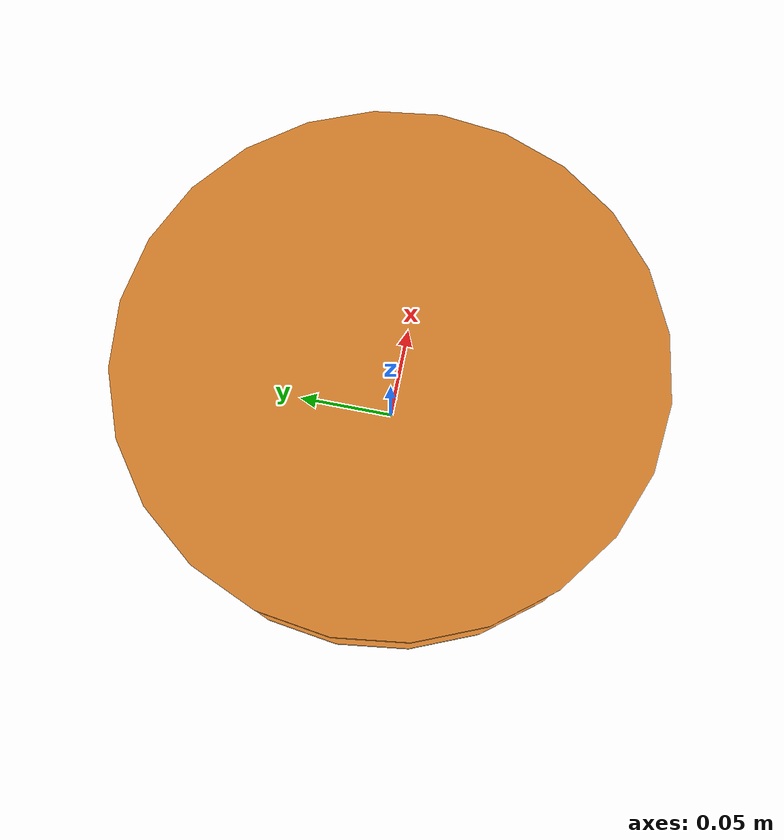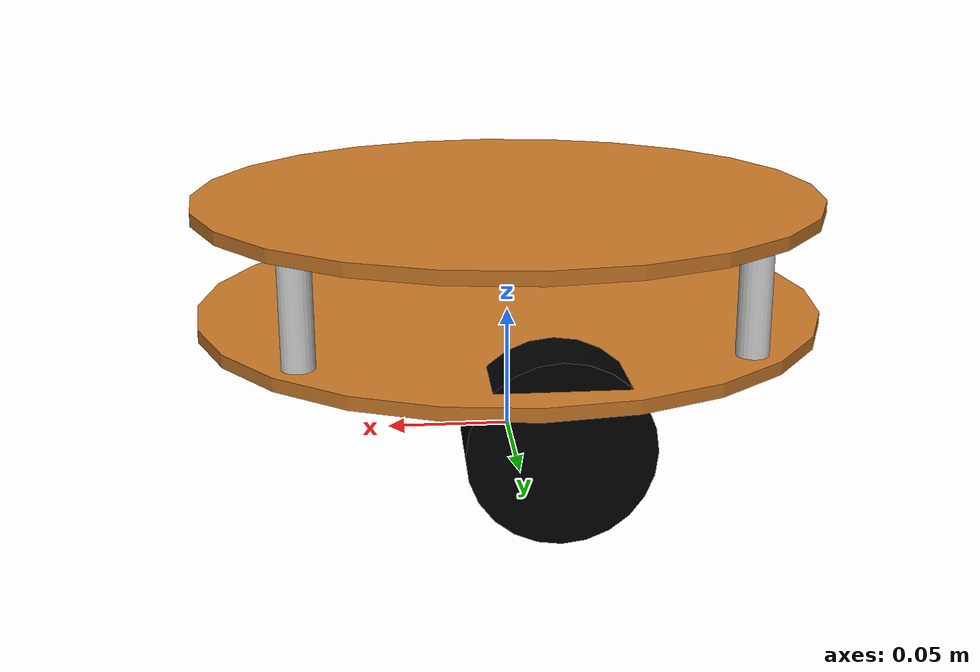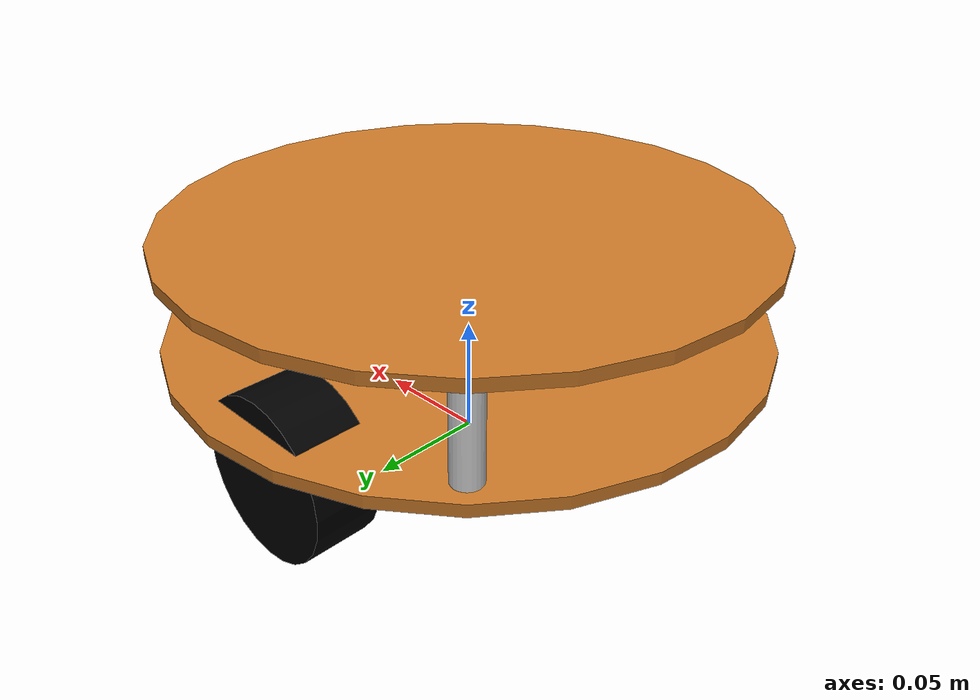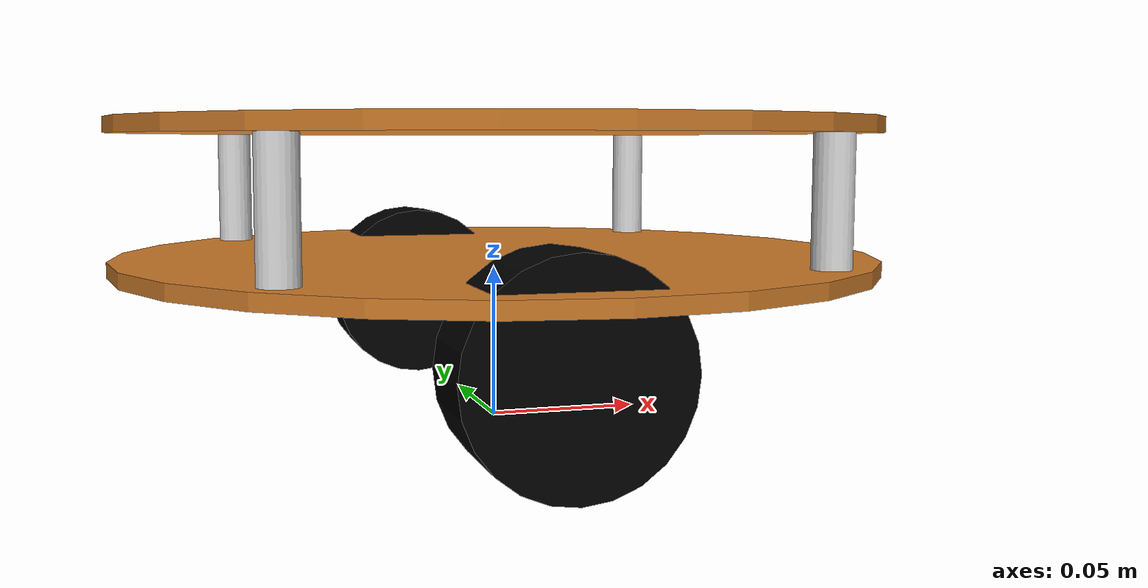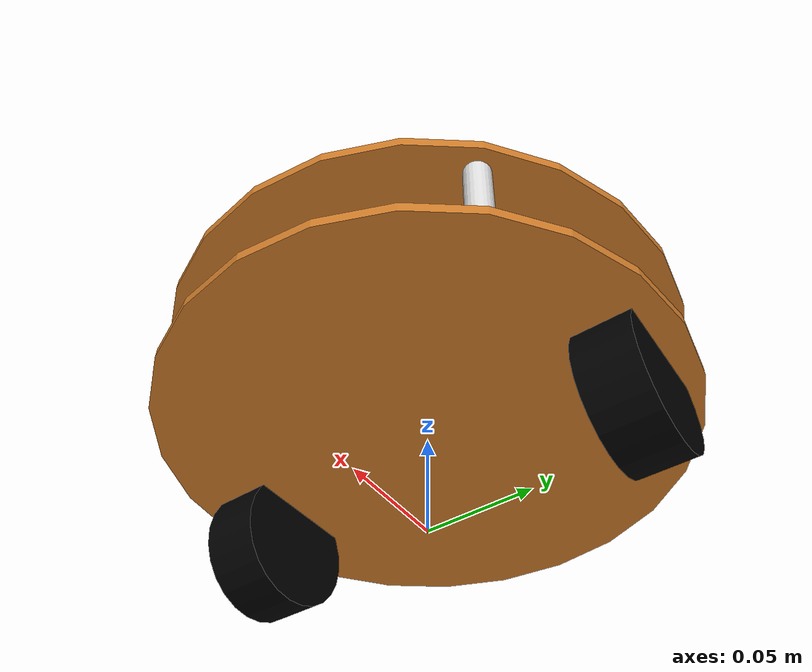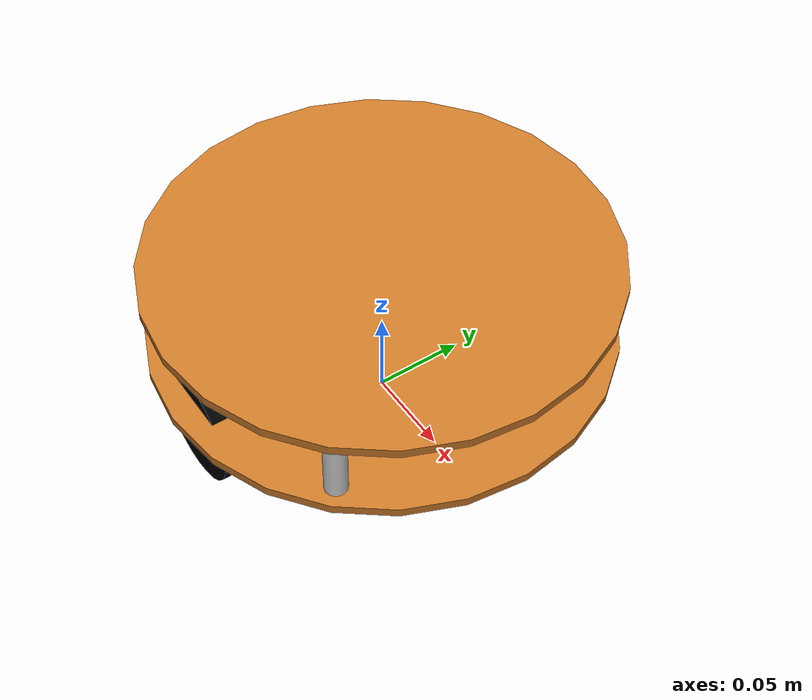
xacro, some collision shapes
<?xml version="1.0"?>

<robot name="s1"
	 xmlns:sensor="http://playerstage.sourceforge.net/gazebo/xmlschema/#sensor"
         xmlns:controller="http://playerstage.sourceforge.net/gazebo/xmlschema/#controller"
         xmlns:interface="http://playerstage.sourceforge.net/gazebo/xmlschema/#interface"
	 xmlns:xacro="http://ros.org.wiki/xacro">
<!--          xmlns:xacro="http://playerstage.sourceforge.net/gazebo/xmlschema/#interface"
-->
<xacro:include filename="$(find s1_description)/urdf/s1_body.urdf.xacro"/>
<xacro:include filename="$(find s1_description)/urdf/s1_robot_hardware.urdf.xacro" />

<xacro:property name="base_length" value="0.005" />
<xacro:property name="base_radius" value=".125" />
<xacro:property name="top_length" value="0.005" />
<xacro:property name="top_radius" value="0.125" />
<xacro:property name="body_pos" value="0 0 0.0525" />
<xacro:property name="wheel_radius" value="0.0325" />
<xacro:property name="wheel_length" value="0.027" />
<xacro:property name="middle_left_front_radius" value="0.006"/>
<xacro:property name="middle_left_front_length" value="0.045"/>
<xacro:property name="middle_left_rear_radius" value="0.006"/>
<xacro:property name="middle_left_rear_length" value="0.045"/>
<xacro:property name="middle_right_front_radius" value="0.006"/>
<xacro:property name="middle_right_front_length" value="0.045"/>
<xacro:property name="middle_right_rear_radius" value="0.006"/>
<xacro:property name="middle_right_rear_length" value="0.045"/>

<xacro:property name="wheel_left_pos" value="-0.008 0.0975 -0.02" />
<xacro:property name="wheel_right_pos" value="-0.008 -0.0975  -0.02" />

<xacro:property name="middle_left_front_pos_x" value="0.08" />
<xacro:property name="middle_left_front_pos_y" value="0.08" />

<xacro:property name="middle_left_rear_pos_x" value="-0.08" />
<xacro:property name="middle_left_rear_pos_y" value="0.08" />

<xacro:property name="middle_right_front_pos_x" value="0.08" />
<xacro:property name="middle_right_front_pos_y" value="-0.08" />

<xacro:property name="middle_right_rear_pos_x" value="-0.08" />
<xacro:property name="middle_right_rear_pos_y" value="-0.08" />
<xacro:property name="middle_common_y" value="0.08"  />
<xacro:property name="middle_common_z" value="0.0225" />
<s1_body/>
</robot>

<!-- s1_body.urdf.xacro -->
<robot  name="s1_body" xmlns:xacro="http://ros.org.wiki/xacro">

  <xacro:macro name="s1_body">
    <material name="Green">
      <color rgba="0.0 0.8 0.0 1.0" />
    </material>

<!-- base foot print -->
  <link name="base_footprint">
    <visual>
      <geometry>
        <box size="0.001 0.001 0.001" />
      </geometry>
      <material name="Green">
        <color rgba="0 255 0 1" />
      </material>
      <origin xyz="0 0 0" rpy="0 0 0" />
    </visual>
  </link>

  <joint name="base_top" type="fixed">
    <parent link="base_link" />
    <child link="top_link" />
    <origin xyz="0 0 0.045" rpy="0 0 0" />
    <axis xyz="0 0 0" />
  </joint>
  <link name="left_wheel_link" >
    <visual>
      <origin xyz="0 0 0" rpy="0 1.5707 1.5707" />
        <geometry>
          <mesh filename="package://s1_description/meshes/wheel.dae"/>
        </geometry>
         <material name="black">
          <color rgba="0 0 0 1"/>
        </material>
      </visual>

    <inertial>
      <origin xyz="0 0 0"/>
      <mass value="0.01" />
      <inertia ixx="0.001" ixy="0.0" ixz="0.0"
        iyy="0.001" iyz="0.0" izz="0.001" />
    </inertial>

    <collision>
      <origin xyz="0 0 0" rpy="0 1.5707 1.5707" />
      <geometry>
        <cylinder radius="${wheel_radius}" length = "${wheel_length}"/>
      </geometry>
    </collision>

    </link>

    <joint name="base_left_wheel_joint" type="continuous">
      <origin rpy=" 0 0 0" xyz="${wheel_left_pos}"/>
      <parent link="base_link"/>
      <child link="left_wheel_link"/>
      <axis xyz="0 1 0" />
    </joint>

  <link name="right_wheel_link" >
    <visual>
      <origin xyz="0 0 0" rpy="0 1.5707 1.5707" />
        <geometry>
          <mesh filename="package://s1_description/meshes/wheel.dae"/>
        </geometry>
         <material name="black">
          <color rgba="0 0 0 1"/>
        </material>
      </visual>

    <inertial>
      <origin xyz="0 0 0 "/>
      <mass value="0.01" />
      <inertia ixx="0.001" ixy="0.0" ixz="0.0"
        iyy="0.001" iyz="0.0" izz="0.001" />
    </inertial>

    <collision>
      <origin xyz="0 0 0" rpy="0 1.5707 1.5707" />
      <geometry>
        <cylinder radius="${wheel_radius}" length = "${wheel_length}"/>
      </geometry>
    </collision>

    </link>

    <joint name="base_right_wheel_joint" type="continuous">
      <origin rpy=" 0 0 0" xyz="${wheel_right_pos}"/>
      <parent link="base_link"/>
      <child link="right_wheel_link"/>
      <axis xyz="0 1 0" />
    </joint>

<xacro:middle parent="base_link" posName="left_front" x_pos="${middle_left_front_pos_x}" y_pos="${middle_left_front_pos_y}" z_pos="${middle_common_z}" radius="${middle_left_front_radius}" length="${middle_left_front_length}"/>

<xacro:middle parent="base_link" posName="left_rear" x_pos="${middle_left_rear_pos_x}" y_pos="${middle_left_rear_pos_y}" z_pos="${middle_common_z}" radius="${middle_left_rear_radius}" length="${middle_left_rear_length}"/>

<xacro:middle parent="base_link" posName="right_front" x_pos="${middle_right_front_pos_x}" y_pos="${middle_right_front_pos_y}" z_pos="${middle_common_z}" radius="${middle_right_front_radius}" length="${middle_right_front_length}"/>
<xacro:middle parent="base_link" posName="right_rear" x_pos="${middle_right_rear_pos_x}" y_pos="${middle_right_rear_pos_y}" z_pos="${middle_common_z}" radius="${middle_right_rear_radius}" length="${middle_right_rear_length}"/>

<!-- base link -->
  <link name="base_link">
    <visual>
       <origin rpy="0 0 0" xyz="0 0 0"/>

       <geometry>
         <cylinder radius="${base_radius}" length="${base_length}"/>
       </geometry>
       <material name="white">
         <color rgba="0.8 0.4784 0.16078 1"/>
       </material>
    </visual>
  </link>

<joint name="base_footprint_joint" type="fixed">
  <origin rpy="0 0 0" xyz="${body_pos}"/>
  <parent link="base_footprint" />
  <child link="base_link" />
</joint>

  <!--top link -->
  <link name="top_link">
    <visual>
      <geometry>
        <cylinder length="${top_length}" radius="${top_radius}"/>
      </geometry>
      <material name="">
        <color rgba="0.8 0.4784 0.16078 1" />
      </material>
    </visual>
  </link>
  </xacro:macro>
</robot>

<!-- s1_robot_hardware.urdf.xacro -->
<robot name="s1_robot_hardware" xmlns:xacro="http://ros.org/wiki/xacro">

<macro name="wheel" params="parent wheelname position ">
    <link name="${wheelname}_wheel_link" >
      <visual>
        <origin xyz="0 0 0" rpy="0 1.5707 1.5707" />
        <geometry>
          <mesh filename="package://kobuki_description/meshes/wheel.dae"/>
        </geometry>
         <material name="black">
          <color rgba="0 0 0 1"/>
        </material>
      </visual>

    <inertial>
      <origin xyz="0 0 0"/>
      <mass value="0.01" />
      <inertia ixx="0.001" ixy="0.0" ixz="0.0"
        iyy="0.001" iyz="0.0" izz="0.001" />
    </inertial>

    <collision>
      <origin xyz="0 0 0" rpy="0 1.5707 1.5707" />
      <geometry>
        <cylinder radius="${wheel_radius}" length = "${wheel_length}"/>
      </geometry>
    </collision>

    </link>

    <joint name="base_${wheelname}_wheel_joint" type="continuous">
      <origin rpy=" 0 0 0" xyz="${position}"/>
      <parent link="${parent}"/>
      <child link="${wheelname}_wheel_link"/>
      <axis xyz="0 1 0" />
    </joint>
</macro>

<macro name="middle" params="parent posName x_pos y_pos z_pos radius length">
  <joint name="middle_${posName}_pos" type="fixed">
    <origin xyz="${x_pos} ${y_pos} ${z_pos}" rpy="0 0 0"/>
    <parent link="${parent}"/>
    <child link="middle_${posName}_pos" />
  </joint>
  <link name="middle_${posName}_pos">
    <visual>
      <geometry>
        <cylinder length="${length}"  radius="${radius}"/>
      </geometry>
      <material name="wihte">
        <color rgba="220 220 220 1"/>
      </material>
    </visual>
  </link>
</macro>

</robot>
